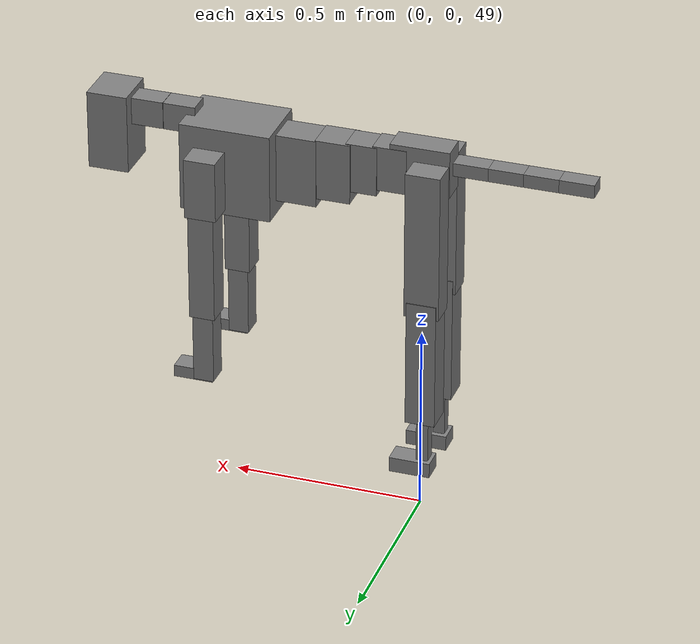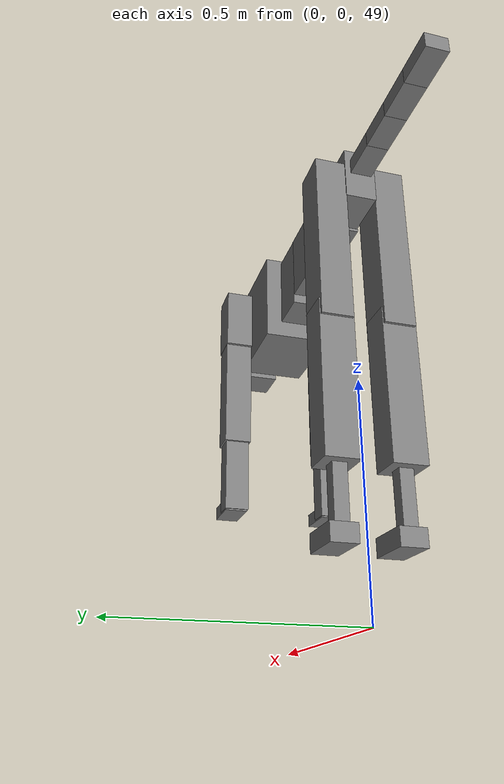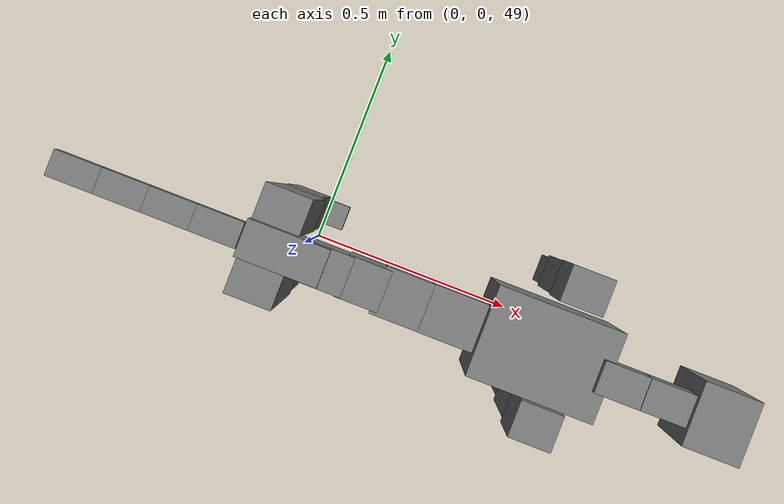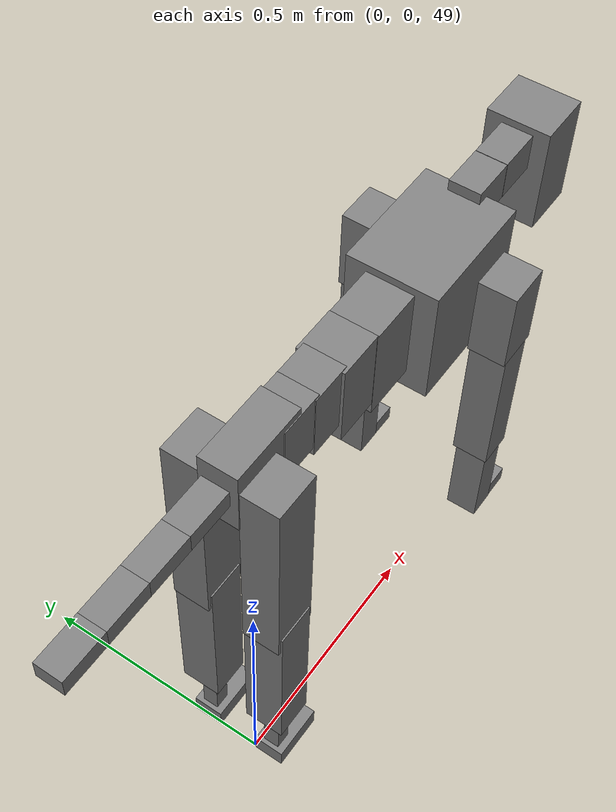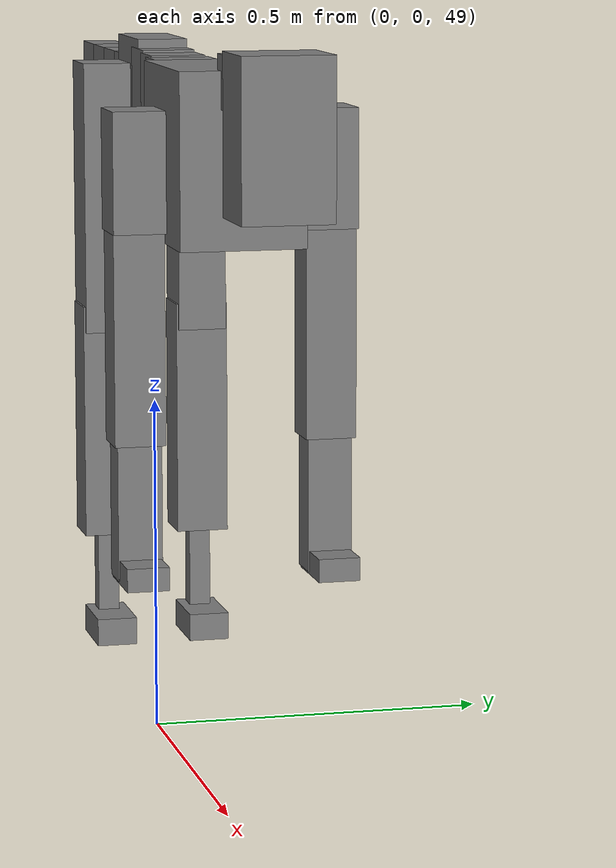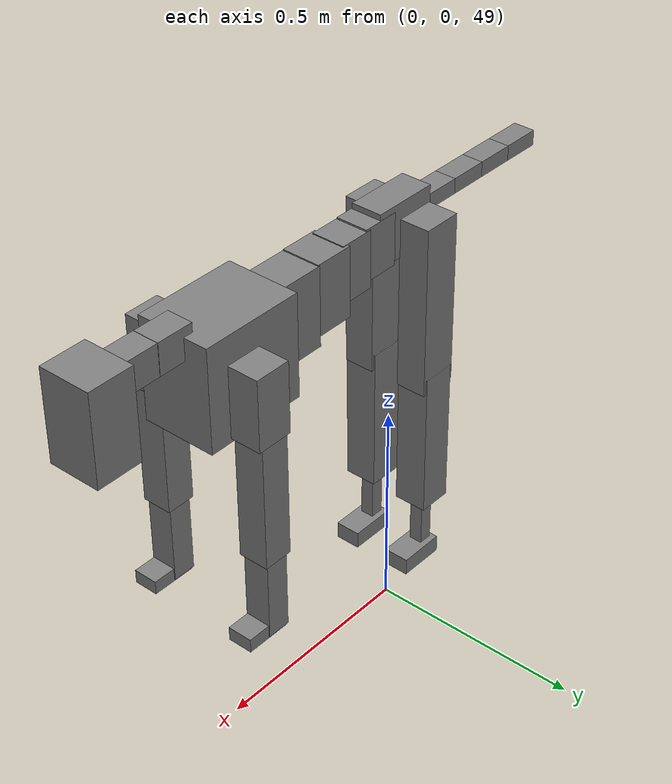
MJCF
<mujoco model="dog">

    <default>
        <joint armature="0.02" stiffness="1" damping="0.2" limited="true"/>
        <geom condim="3" friction="1 0.05 0.05" margin="0.01"/>
        <motor ctrllimited="true" ctrlrange="-1.0 1.0" forcelimited="true" gear="50"/>
    </default>

    <compiler inertiafromgeom="true" angle="radian"/>

    <option timestep="0.016" iterations="50" tolerance="1e-10" solver="Newton" jacobian="dense" cone="pyramidal"/>

    <size nconmax="20000" njmax="60000" nstack="5000000"/>
    <visual>
        <map force="0.1" zfar="30"/>
        <rgba haze="0.15 0.25 0.35 1"/>
        <quality shadowsize="2048"/>
        <global offwidth="800" offheight="800"/>
    </visual>

    <asset>
        <texture type="skybox" builtin="gradient" rgb1="0.3 0.5 0.7" rgb2="0 0 0" width="512" height="512"/>
        <texture name="texplane" type="2d" builtin="checker" rgb1=".2 .3 .4" rgb2=".1 0.15 0.2" width="512" height="512"
                 mark="cross" markrgb=".8 .8 .8"/>
        <texture name="texgeom" type="cube" builtin="flat" mark="cross" width="127" height="1278" rgb1="0.8 0.6 0.4"
                 rgb2="0.8 0.6 0.4" markrgb="1 1 1" random="0.01"/>

        <material name="matplane" reflectance="0.3" texture="texplane" texrepeat="1 1" texuniform="true"/>
        <material name="matgeom" texture="texgeom" texuniform="true" rgba="0.8 0.6 .4 1"/>
    </asset>

    <worldbody>
        <geom name="floor" pos="0 0 0" size="0 0 .25" type="plane" material="matplane" condim="3"/>

        <light directional="false" diffuse=".2 .2 .2" specular="0 0 0" pos="0 0 5" dir="0 0 -1" castshadow="false"/>
        <light mode="targetbodycom" target="torso" directional="false" diffuse=".8 .8 .8" specular="0.3 0.3 0.3"
               pos="0 0 4.0" dir="0 0 -1"/>

        <body name="root" pos="0 0 50">
            <freejoint name="root_1"/>
            <geom type="box" pos="0 0 -0.02" size="0.0774  0.0358  0.063" density="2030"/>

            <body name="spine1" pos="0.054 0 0">
                <joint name="spine1_y" axis="0 1 0" range="0 0.7" limited="true"/>
                <geom type="box" pos="0.02375 0 -0.03" size="0.04375  0.0375  0.05985" density="2030"/>

                <body name="spine2" pos="0.0612 0 0">
                    <joint name="spine2_y" axis="0 1 0" range="-0.15 0.15" limited="true"/>
                    <geom type="box" pos="0.03555  0  -0.04" size="0.04055  0.039  0.06615" density="2030"/>

                    <body name="spine3" pos="0.0730 0 0">
                        <joint name="spine3_y" axis="0 1 0" range="-0.15 0.15" limited="true"/>
                        <geom type="box" pos="0.03555  0  -0.057" size="0.04555  0.0445  0.081" density="2030"/>

                        <body name="spine4" pos="0.0780 0 0">
                            <joint name="spine4_y" axis="0 1 0" range="-0.15 0.15" limited="true"/>
                            <geom type="box" pos="0.05265  0  -0.07" size="0.05265  0.045  0.09135" density="2030"/>

                            <body name="torso" pos="0.1082 0 0">
                                <joint name="torso_y" axis="0 1 0" range="-0.15 0.15" limited="true"/>
                                <geom type="box" pos="0.11925  0  -0.085" size="0.11925  0.085  0.11745"
                                      density="2030"/>

                                <body name="neck1" pos="0.2160  0   0.0180">
                                    <joint name="neck1_y" axis="0 1 0" range="-1.2  -1" limited="true"/>
                                    <geom type="box" pos="0.0423  0  0" size="0.0423  0.03  0.036" density="2325"/>

                                    <body name="neck2" pos="0.0853  0  0">
                                        <joint name="neck2_y" axis="0 1 0" range="0.1  0" limited="true"/>
                                        <geom type="box" pos="0.0423  0  0" size="0.0423  0.03  0.036" density="2325"/>

                                        <body name="head" pos="0.0853  0  0">
                                            <joint name="head_y" axis="0 1 0" range="-0.3  -0.2" limited="true"/>
                                            <geom type="box" pos="0.0531  0  -0.055" size="0.0531  0.06  0.1044"
                                                  density="4030"/>

                                        </body>
                                    </body>
                                </body>

                                <body name="front_shoulder" pos="0.156  0   -0.0480">
                                    <joint name="front_shoulder_y" axis="0 1 0" range="-1 1.5" limited="true"/>
                                    <geom type="box" pos="0 0.13 -0.0539" size="0.0414  0.0354  0.0806" density="1158"/>
                                    <geom type="box" pos="0 -0.13 -0.0539" size="0.0414  0.0354  0.0806"
                                          density="1158"/>

                                    <body name="front_elbow" pos="0  0  -0.1079">
                                        <joint name="front_elbow_y" axis="0 1 0" range="-2 0" limited="true"/>
                                        <geom type="box" pos="0 0.13 -0.1550" size="0.0335  0.0343  0.1550"
                                              density="1081"/>
                                        <geom type="box" pos="0 -0.13 -0.1550" size="0.0335  0.0343  0.1550"
                                              density="1081"/>

                                        <body name="front_wrist" pos="0  0  -0.3101">
                                            <joint name="front_wrist_y" axis="0 1 0" range="-0.2 0" limited="true"/>
                                            <geom type="box" pos="0 0.13 -0.0847" size="0.0269  0.0299  0.0978"
                                                  density="1664"/>
                                            <geom type="box" pos="0 -0.13 -0.0847" size="0.0269  0.0299  0.0978"
                                                  density="1664"/>

                                            <body name="front_finger_end" pos="0  0  -0.1694">
                                                <joint name="front_finger_y" axis="0 1 0" range="-0.4 1"
                                                       limited="true"/>
                                                <geom type="box" pos="0.0283  0.13  -0.0008"
                                                      size="0.0519  0.0283  0.0158" density="1515"/>
                                                <geom type="box" pos="0.0283  -0.13  -0.0008"
                                                      size="0.0519  0.0283  0.0158" density="1515"/>

                                            </body>

                                        </body>
                                    </body>
                                </body>

                            </body>
                        </body>
                    </body>
                </body>
            </body>

            <body name="back_hip" pos="-0.03 0 -0.018">
                <joint name="back_hip_y" axis="0 1 0" range="-1.5 0.3" limited="true"/>
                <geom type="box" pos="0 0.07 -0.1762" size="0.0452  0.0355  0.1990" density="1154"/>
                <geom type="box" pos="0 -0.07 -0.1762" size="0.0452  0.0355  0.1990" density="1154"/>

                <body name="back_knee" pos="0  0  -0.3524">
                    <joint name="back_knee_y" axis="0 1 0" range="0 2.8" limited="true"/>
                    <geom type="box" pos="0 0.07 -0.1573" size="0.0388  0.0382  0.1729" density="1227"/>
                    <geom type="box" pos="0 -0.07 -0.1573" size="0.0388  0.0382  0.1729" density="1227"/>

                    <body name="back_ankle" pos="0  0  -0.3147">
                        <joint name="back_ankle_y" axis="0 1 0" range="-2.2 0" limited="true"/>
                        <geom type="box" pos="0 0.07 -0.0747" size="0.0156  0.0156  0.0860" density="1284"/>
                        <geom type="box" pos="0 -0.07 -0.0747" size="0.0156  0.0156  0.0860" density="1284"/>

                        <body name="back_toe_end" pos="0  0  -0.1494">
                            <joint name="back_toe_y" axis="0 1 0" range="-0.4 1" limited="true"/>
                            <geom type="box" pos="0.0294  0.07  -0.0050" size="0.0538  0.0294  0.0200" density="1515"/>
                            <geom type="box" pos="0.0294  -0.07  -0.0050" size="0.0538  0.0294  0.0200" density="1515"/>

                        </body>
                    </body>
                </body>
            </body>

            <body name="tail1" pos="-0.074 0 -0.006">
                <joint name="tail1_y" axis="0 1 0" range="-0.2 0.2" limited="true"/>
                <geom type="box" pos="-0.0536  0  0" size="0.045  0.025  0.0175" density="1587"/>

                <body name="tail2" pos="-0.09 0 0">
                    <joint name="tail2_y" axis="0 1 0" range="-0.2 0.2" limited="true"/>
                    <geom type="box" pos="-0.0536  0  0" size="0.045  0.025  0.0175" density="1587"/>

                    <body name="tail3" pos="-0.09 0 0">
                        <joint name="tail3_y" axis="0 1 0" range="-0.2 0.2" limited="true"/>
                        <geom type="box" pos="-0.0536  0  0" size="0.045  0.025  0.0175" density="1587"/>

                        <body name="tail4" pos="-0.09 0 0">
                            <joint name="tail4_y" axis="0 1 0" range="-0.2 0.2" limited="true"/>
                            <geom type="box" pos="-0.0536  0  0" size="0.045  0.025  0.0175" density="1587"/>

                        </body>
                    </body>
                </body>
            </body>
        </body>
    </worldbody>

    <actuator>
        <motor joint="spine1_y" forcerange="-150 150     "/>
        <motor joint="spine2_y" forcerange="-150 150     "/>
        <motor joint="spine3_y" forcerange="-150 150     "/>
        <motor joint="spine4_y" forcerange="-150 150     "/>
        <motor joint="torso_y" forcerange="-150 150     "/>
        <motor joint="neck1_y" forcerange="-100 100       "/>
        <motor joint="neck2_y" forcerange="-100 100       "/>
        <motor joint="head_y" forcerange="-150 150       "/>
        <motor joint="front_shoulder_y" forcerange="-155.93 180.10"/>
        <motor joint="front_elbow_y" forcerange="-160.87 188.23"/>
        <motor joint="front_wrist_y" forcerange="-129.07 110.01"/>
        <motor joint="front_finger_y" forcerange="-36.08 74.94"/>
        <motor joint="back_hip_y" forcerange="-309.70 363.01"/>
        <motor joint="back_knee_y" forcerange="-366.07 389.86"/>
        <motor joint="back_angle_y" forcerange="-54.35 95.75"/>
        <motor joint="back_toe_y" forcerange="-114.41 40.53"/>
        <motor joint="tail1_y" forcerange="-50 50     "/>
        <motor joint="tail2_y" forcerange="-50 50     "/>
        <motor joint="tail3_y" forcerange="-50 50     "/>
        <motor joint="tail4_y" forcerange="-50 50     "/>
    </actuator>
</mujoco>
